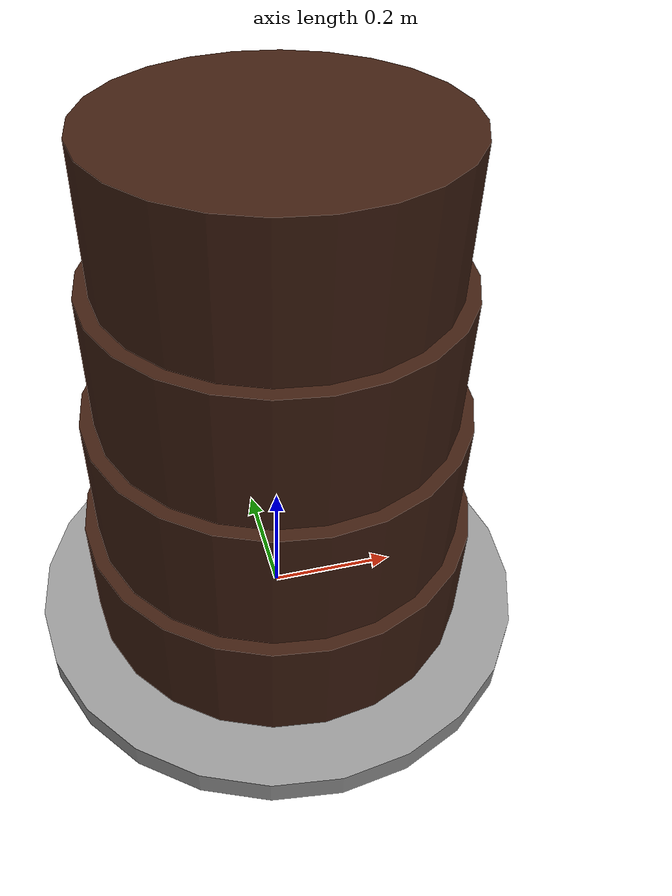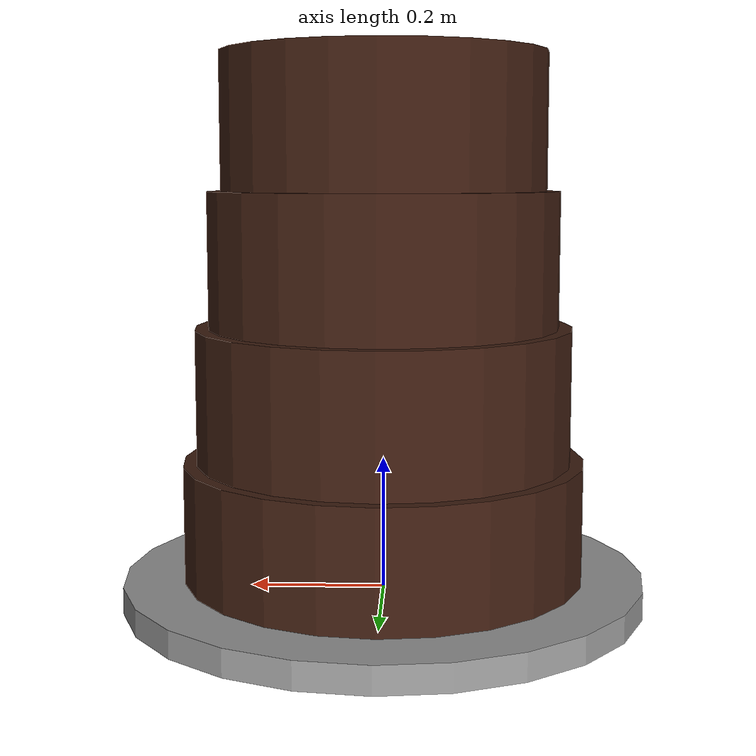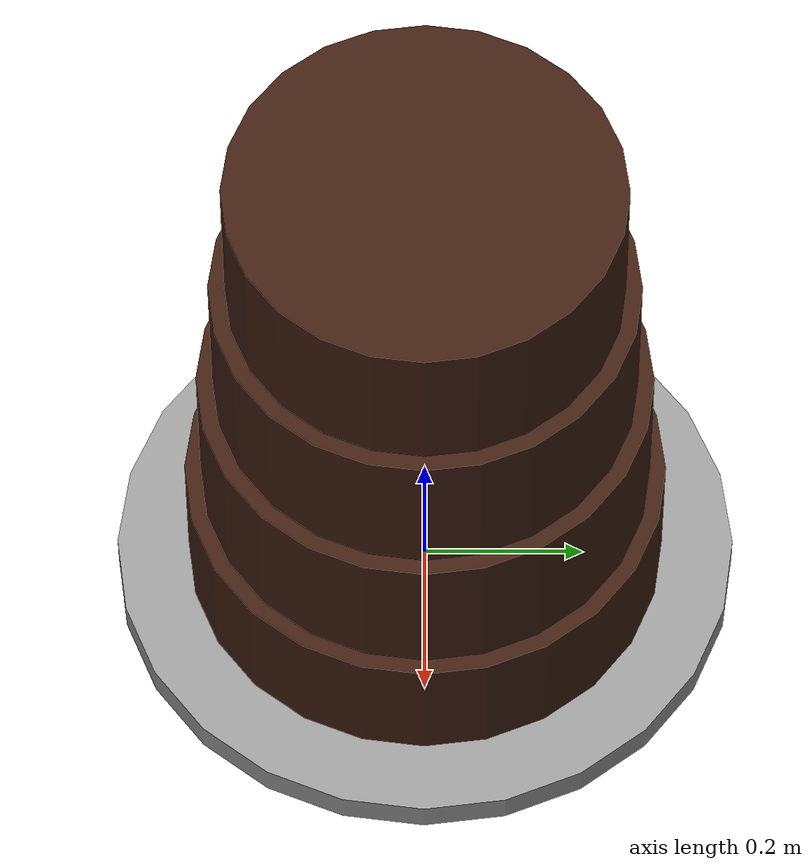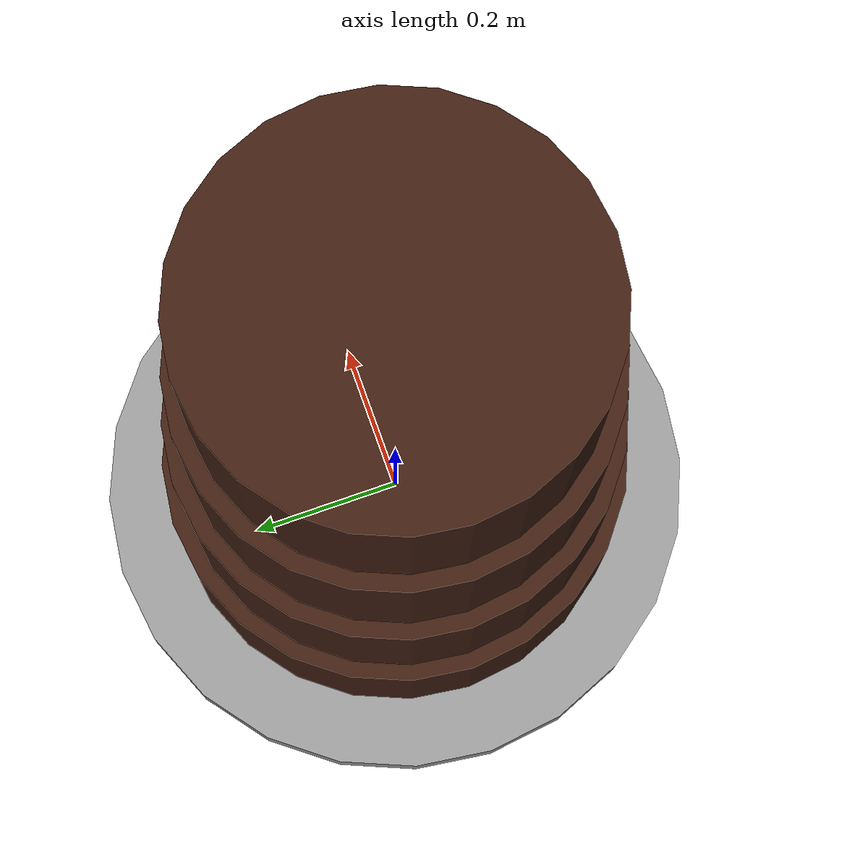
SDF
<?xml version='1.0'?>
<sdf version='1.6'>
  <model name='construction_barrel_brown'>
    <link name='link_0'>
      <pose frame=''>0 0 0.005 0 -0 0</pose>
      <inertial>
        <mass>1</mass>
        <inertia>
          <ixx>0.145833</ixx>
          <ixy>0</ixy>
          <ixz>0</ixz>
          <iyy>0.145833</iyy>
          <iyz>0</iyz>
          <izz>0.125</izz>
        </inertia>
        <pose frame=''>0 0 0 0 -0 0</pose>
      </inertial>
      <gravity>1</gravity>
      <self_collide>0</self_collide>
      <kinematic>0</kinematic>
      <visual name='visual'>
        <pose frame=''>0 0 0 0 -0 0</pose>
        <geometry>
          <cylinder>
            <radius>0.39</radius>
            <length>0.04</length>
          </cylinder>
        </geometry>
        <material>
          <lighting>1</lighting>
          <script>
            <uri>file://media/materials/scripts/gazebo.material</uri>
            <name>Gazebo/Grey</name>
          </script>
          <shader type='pixel'>
            <normal_map>__default__</normal_map>
          </shader>
          <ambient>0.3 0.3 0.3 1</ambient>
          <diffuse>0.7 0.7 0.7 1</diffuse>
          <specular>0.01 0.01 0.01 1</specular>
          <emissive>0 0 0 1</emissive>
        </material>
        <transparency>0</transparency>
        <cast_shadows>1</cast_shadows>
      </visual>
      <collision name='collision'>
        <laser_retro>0</laser_retro>
        <max_contacts>10</max_contacts>
        <pose frame=''>0 0 0 0 -0 0</pose>
        <geometry>
          <cylinder>
            <radius>0.39</radius>
            <length>0.04</length>
          </cylinder>
        </geometry>
        <surface>
          <friction>
            <ode>
              <mu>1</mu>
              <mu2>1</mu2>
              <fdir1>0 0 0</fdir1>
              <slip1>0</slip1>
              <slip2>0</slip2>
            </ode>
            <torsional>
              <coefficient>1</coefficient>
              <patch_radius>0</patch_radius>
              <surface_radius>0</surface_radius>
              <use_patch_radius>1</use_patch_radius>
              <ode>
                <slip>0</slip>
              </ode>
            </torsional>
          </friction>
          <bounce>
            <restitution_coefficient>0</restitution_coefficient>
            <threshold>1e+06</threshold>
          </bounce>
          <contact>
            <collide_without_contact>0</collide_without_contact>
            <collide_without_contact_bitmask>1</collide_without_contact_bitmask>
            <collide_bitmask>1</collide_bitmask>
            <ode>
              <soft_cfm>0</soft_cfm>
              <soft_erp>0.2</soft_erp>
              <kp>1e+13</kp>
              <kd>1</kd>
              <max_vel>0.01</max_vel>
              <min_depth>0</min_depth>
            </ode>
            <bullet>
              <split_impulse>1</split_impulse>
              <split_impulse_penetration_threshold>-0.01</split_impulse_penetration_threshold>
              <soft_cfm>0</soft_cfm>
              <soft_erp>0.2</soft_erp>
              <kp>1e+13</kp>
              <kd>1</kd>
            </bullet>
          </contact>
        </surface>
      </collision>
    </link>
    <link name='link_clone'>
      <pose frame=''>0 0 0.1 0 -0 0</pose>
      <inertial>
        <mass>0.201505</mass>
        <inertia>
          <ixx>0.0132759</ixx>
          <ixy>0</ixy>
          <ixz>0</ixz>
          <iyy>0.0132759</iyy>
          <iyz>0</iyz>
          <izz>0.0251882</izz>
        </inertia>
        <pose frame=''>0 0 0 0 -0 0</pose>
      </inertial>
      <self_collide>0</self_collide>
      <kinematic>0</kinematic>
      <gravity>1</gravity>
      <visual name='visual'>
        <geometry>
          <cylinder>
            <radius>0.3</radius>
            <length>0.2</length>
          </cylinder>
        </geometry>
        <material>
          <script>
            <name>Gazebo/Grey</name>
            <uri>file://media/materials/scripts/gazebo.material</uri>
          </script>
          <shader type='pixel'>
            <normal_map>__default__</normal_map>
          </shader>
          <ambient>0.25 0.12 0.07 1</ambient>
          <diffuse>0.25 0.12 0.07 1</diffuse>
          <specular>0.25 0.12 0.07 1</specular>
          <emissive>0 0 0 1</emissive>
        </material>
        <pose frame=''>0 0 0 0 -0 0</pose>
        <transparency>0</transparency>
        <cast_shadows>1</cast_shadows>
      </visual>
      <collision name='collision'>
        <laser_retro>0</laser_retro>
        <max_contacts>10</max_contacts>
        <pose frame=''>0 0 0 0 -0 0</pose>
        <geometry>
          <cylinder>
            <radius>0.3</radius>
            <length>0.2</length>
          </cylinder>
        </geometry>
        <surface>
          <friction>
            <ode>
              <mu>1</mu>
              <mu2>1</mu2>
              <fdir1>0 0 0</fdir1>
              <slip1>0</slip1>
              <slip2>0</slip2>
            </ode>
            <torsional>
              <coefficient>1</coefficient>
              <patch_radius>0</patch_radius>
              <surface_radius>0</surface_radius>
              <use_patch_radius>1</use_patch_radius>
              <ode>
                <slip>0</slip>
              </ode>
            </torsional>
          </friction>
          <bounce>
            <restitution_coefficient>0</restitution_coefficient>
            <threshold>1e+06</threshold>
          </bounce>
          <contact>
            <collide_without_contact>0</collide_without_contact>
            <collide_without_contact_bitmask>1</collide_without_contact_bitmask>
            <collide_bitmask>1</collide_bitmask>
            <ode>
              <soft_cfm>0</soft_cfm>
              <soft_erp>0.2</soft_erp>
              <kp>1e+13</kp>
              <kd>1</kd>
              <max_vel>0.01</max_vel>
              <min_depth>0</min_depth>
            </ode>
            <bullet>
              <split_impulse>1</split_impulse>
              <split_impulse_penetration_threshold>-0.01</split_impulse_penetration_threshold>
              <soft_cfm>0</soft_cfm>
              <soft_erp>0.2</soft_erp>
              <kp>1e+13</kp>
              <kd>1</kd>
            </bullet>
          </contact>
        </surface>
      </collision>
    </link>
    <link name='link_clone_clone'>
      <pose frame=''>0 0 0.3 0 -0 0</pose>
      <inertial>
        <mass>0.201505</mass>
        <inertia>
          <ixx>0.0132759</ixx>
          <ixy>0</ixy>
          <ixz>0</ixz>
          <iyy>0.0132759</iyy>
          <iyz>0</iyz>
          <izz>0.0251882</izz>
        </inertia>
        <pose frame=''>0 0 0 0 -0 0</pose>
      </inertial>
      <self_collide>0</self_collide>
      <kinematic>0</kinematic>
      <gravity>1</gravity>
      <visual name='visual'>
        <geometry>
          <cylinder>
            <radius>0.28</radius>
            <length>0.2</length>
          </cylinder>
        </geometry>
        <material>
          <script>
            <name>Gazebo/Grey</name>
            <uri>file://media/materials/scripts/gazebo.material</uri>
          </script>
          <shader type='pixel'>
            <normal_map>__default__</normal_map>
          </shader>
          <ambient>0.25 0.12 0.07 1</ambient>
          <diffuse>0.25 0.12 0.07 1</diffuse>
          <specular>0.25 0.12 0.07 1</specular>
          <emissive>0 0 0 1</emissive>
        </material>
        <pose frame=''>0 0 0 0 -0 0</pose>
        <transparency>0</transparency>
        <cast_shadows>1</cast_shadows>
      </visual>
      <collision name='collision'>
        <laser_retro>0</laser_retro>
        <max_contacts>10</max_contacts>
        <pose frame=''>0 0 0 0 -0 0</pose>
        <geometry>
          <cylinder>
            <radius>0.28</radius>
            <length>0.2</length>
          </cylinder>
        </geometry>
        <surface>
          <friction>
            <ode>
              <mu>1</mu>
              <mu2>1</mu2>
              <fdir1>0 0 0</fdir1>
              <slip1>0</slip1>
              <slip2>0</slip2>
            </ode>
            <torsional>
              <coefficient>1</coefficient>
              <patch_radius>0</patch_radius>
              <surface_radius>0</surface_radius>
              <use_patch_radius>1</use_patch_radius>
              <ode>
                <slip>0</slip>
              </ode>
            </torsional>
          </friction>
          <bounce>
            <restitution_coefficient>0</restitution_coefficient>
            <threshold>1e+06</threshold>
          </bounce>
          <contact>
            <collide_without_contact>0</collide_without_contact>
            <collide_without_contact_bitmask>1</collide_without_contact_bitmask>
            <collide_bitmask>1</collide_bitmask>
            <ode>
              <soft_cfm>0</soft_cfm>
              <soft_erp>0.2</soft_erp>
              <kp>1e+13</kp>
              <kd>1</kd>
              <max_vel>0.01</max_vel>
              <min_depth>0</min_depth>
            </ode>
            <bullet>
              <split_impulse>1</split_impulse>
              <split_impulse_penetration_threshold>-0.01</split_impulse_penetration_threshold>
              <soft_cfm>0</soft_cfm>
              <soft_erp>0.2</soft_erp>
              <kp>1e+13</kp>
              <kd>1</kd>
            </bullet>
          </contact>
        </surface>
      </collision>
    </link>
    <link name='link_clone_clone_0'>
      <pose frame=''>0 0 0.5 0 0 0</pose>
      <inertial>
        <mass>0.201505</mass>
        <inertia>
          <ixx>0.0132759</ixx>
          <ixy>0</ixy>
          <ixz>0</ixz>
          <iyy>0.0132759</iyy>
          <iyz>0</iyz>
          <izz>0.0251882</izz>
        </inertia>
        <pose frame=''>0 0 0 0 -0 0</pose>
      </inertial>
      <self_collide>0</self_collide>
      <kinematic>0</kinematic>
      <gravity>1</gravity>
      <visual name='visual'>
        <geometry>
          <cylinder>
            <radius>0.26</radius>
            <length>0.2</length>
          </cylinder>
        </geometry>
        <material>
          <script>
            <name>Gazebo/Grey</name>
            <uri>file://media/materials/scripts/gazebo.material</uri>
          </script>
          <shader type='pixel'>
            <normal_map>__default__</normal_map>
          </shader>
          <ambient>0.25 0.12 0.07 1</ambient>
          <diffuse>0.25 0.12 0.07 1</diffuse>
          <specular>0.25 0.12 0.07 1</specular>
          <emissive>0 0 0 1</emissive>
        </material>
        <pose frame=''>0 0 0 0 -0 0</pose>
        <transparency>0</transparency>
        <cast_shadows>1</cast_shadows>
      </visual>
      <collision name='collision'>
        <laser_retro>0</laser_retro>
        <max_contacts>10</max_contacts>
        <pose frame=''>0 0 0 0 -0 0</pose>
        <geometry>
          <cylinder>
            <radius>0.26</radius>
            <length>0.2</length>
          </cylinder>
        </geometry>
        <surface>
          <friction>
            <ode>
              <mu>1</mu>
              <mu2>1</mu2>
              <fdir1>0 0 0</fdir1>
              <slip1>0</slip1>
              <slip2>0</slip2>
            </ode>
            <torsional>
              <coefficient>1</coefficient>
              <patch_radius>0</patch_radius>
              <surface_radius>0</surface_radius>
              <use_patch_radius>1</use_patch_radius>
              <ode>
                <slip>0</slip>
              </ode>
            </torsional>
          </friction>
          <bounce>
            <restitution_coefficient>0</restitution_coefficient>
            <threshold>1e+06</threshold>
          </bounce>
          <contact>
            <collide_without_contact>0</collide_without_contact>
            <collide_without_contact_bitmask>1</collide_without_contact_bitmask>
            <collide_bitmask>1</collide_bitmask>
            <ode>
              <soft_cfm>0</soft_cfm>
              <soft_erp>0.2</soft_erp>
              <kp>1e+13</kp>
              <kd>1</kd>
              <max_vel>0.01</max_vel>
              <min_depth>0</min_depth>
            </ode>
            <bullet>
              <split_impulse>1</split_impulse>
              <split_impulse_penetration_threshold>-0.01</split_impulse_penetration_threshold>
              <soft_cfm>0</soft_cfm>
              <soft_erp>0.2</soft_erp>
              <kp>1e+13</kp>
              <kd>1</kd>
            </bullet>
          </contact>
        </surface>
      </collision>
    </link>
    <link name='link_clone_clone_1'>
      <pose frame=''>-0 -0 0.7 0 -0 0</pose>
      <inertial>
        <mass>0.201505</mass>
        <inertia>
          <ixx>0.0132759</ixx>
          <ixy>0</ixy>
          <ixz>0</ixz>
          <iyy>0.0132759</iyy>
          <iyz>0</iyz>
          <izz>0.0251882</izz>
        </inertia>
        <pose frame=''>0 0 0 0 -0 0</pose>
      </inertial>
      <self_collide>0</self_collide>
      <kinematic>0</kinematic>
      <gravity>1</gravity>
      <visual name='visual'>
        <geometry>
          <cylinder>
            <radius>0.24</radius>
            <length>0.2</length>
          </cylinder>
        </geometry>
        <material>
          <script>
            <name>Gazebo/Grey</name>
            <uri>file://media/materials/scripts/gazebo.material</uri>
          </script>
          <shader type='pixel'>
            <normal_map>__default__</normal_map>
          </shader>
          <ambient>0.25 0.12 0.07 1</ambient>
          <diffuse>0.25 0.12 0.07 1</diffuse>
          <specular>0.25 0.12 0.07 1</specular>
          <emissive>0 0 0 1</emissive>
        </material>
        <pose frame=''>0 0 0 0 -0 0</pose>
        <transparency>0</transparency>
        <cast_shadows>1</cast_shadows>
      </visual>
      <collision name='collision'>
        <laser_retro>0</laser_retro>
        <max_contacts>10</max_contacts>
        <pose frame=''>0 0 0 0 -0 0</pose>
        <geometry>
          <cylinder>
            <radius>0.24</radius>
            <length>0.2</length>
          </cylinder>
        </geometry>
        <surface>
          <friction>
            <ode>
              <mu>1</mu>
              <mu2>1</mu2>
              <fdir1>0 0 0</fdir1>
              <slip1>0</slip1>
              <slip2>0</slip2>
            </ode>
            <torsional>
              <coefficient>1</coefficient>
              <patch_radius>0</patch_radius>
              <surface_radius>0</surface_radius>
              <use_patch_radius>1</use_patch_radius>
              <ode>
                <slip>0</slip>
              </ode>
            </torsional>
          </friction>
          <bounce>
            <restitution_coefficient>0</restitution_coefficient>
            <threshold>1e+06</threshold>
          </bounce>
          <contact>
            <collide_without_contact>0</collide_without_contact>
            <collide_without_contact_bitmask>1</collide_without_contact_bitmask>
            <collide_bitmask>1</collide_bitmask>
            <ode>
              <soft_cfm>0</soft_cfm>
              <soft_erp>0.2</soft_erp>
              <kp>1e+13</kp>
              <kd>1</kd>
              <max_vel>0.01</max_vel>
              <min_depth>0</min_depth>
            </ode>
            <bullet>
              <split_impulse>1</split_impulse>
              <split_impulse_penetration_threshold>-0.01</split_impulse_penetration_threshold>
              <soft_cfm>0</soft_cfm>
              <soft_erp>0.2</soft_erp>
              <kp>1e+13</kp>
              <kd>1</kd>
            </bullet>
          </contact>
        </surface>
      </collision>
    </link>
    <static>1</static>
    <allow_auto_disable>1</allow_auto_disable>
  </model>
</sdf>
